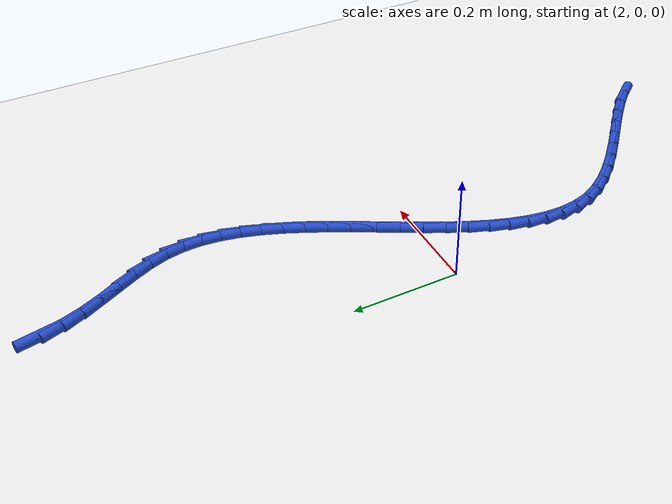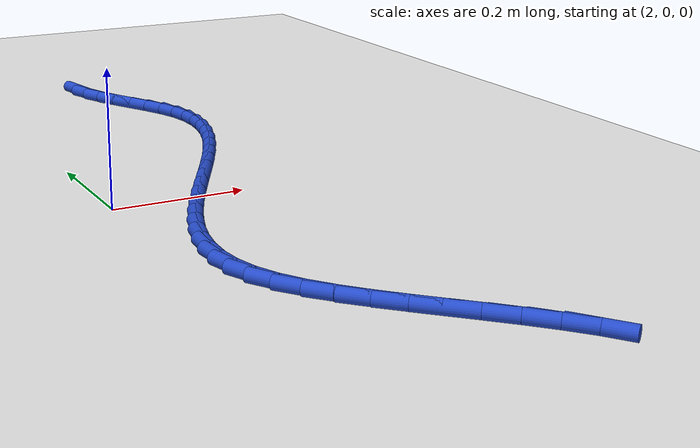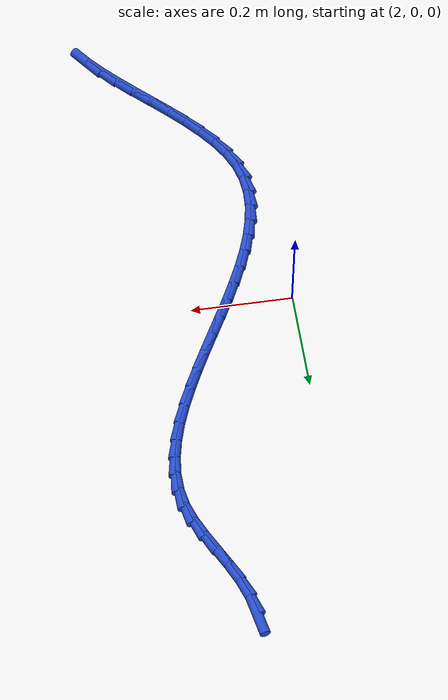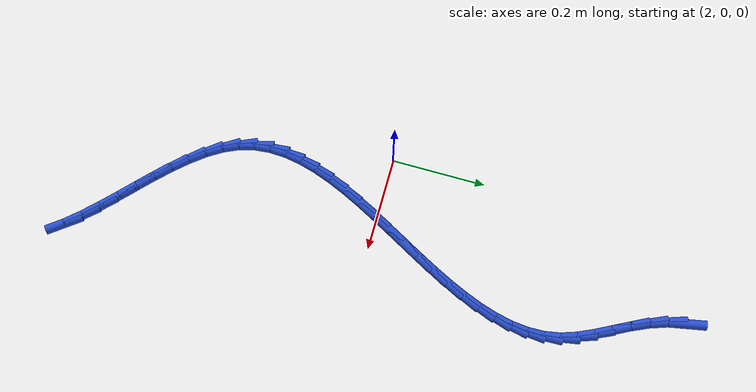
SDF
<sdf version="1.6">
 <world name="default">
  <model name="ground_plane">
   <static>1</static>
   <link name="link">
    <collision name="collision">
     <geometry><plane><normal>0 0 1</normal><size>100 100</size></plane></geometry>
     <surface><friction><ode><mu>100</mu><mu2>50</mu2></ode></friction></surface>
    </collision>
    <visual name="visual">
     <cast_shadows>0</cast_shadows>
     <geometry><plane><normal>0 0 1</normal><size>100 100</size></plane></geometry>
     <material>
      <script><uri>file://media/materials/scripts/gazebo.material</uri><name>Gazebo/WhiteGlow</name></script>
     </material>
    </visual>
   </link>
  </model>
  <model name="line">
   <link name="link_96">
    <pose>2.1782346783369175 0.6746997137805436 0.01 0 1.57 -1.383616062569331</pose>
    <collision name="collision">
     <geometry><cylinder><radius>0.01</radius><length>0.08</length></cylinder></geometry>
    </collision>
    <visual name="visual">
     <material>
      <script><name>Gazebo/Blue</name><uri>file://media/materials/scripts/gazebo.material</uri></script>
     </material>
     <geometry><cylinder><radius>0.01</radius><length>0.08</length></cylinder></geometry>
    </visual>
   </link>
   <link name="link_97">
    <pose>2.1855108415480964 0.6362822710506619 0.01 0 1.57 -1.2395233866798958</pose>
    <collision name="collision">
     <geometry><cylinder><radius>0.01</radius><length>0.08</length></cylinder></geometry>
    </collision>
    <visual name="visual">
     <material>
      <script><name>Gazebo/Blue</name><uri>file://media/materials/scripts/gazebo.material</uri></script>
     </material>
     <geometry><cylinder><radius>0.01</radius><length>0.08</length></cylinder></geometry>
    </visual>
   </link>
   <link name="link_98">
    <pose>2.19804050636858 0.5998532962021736 0.01 0 1.57 -1.1415946008068334</pose>
    <collision name="collision">
     <geometry><cylinder><radius>0.01</radius><length>0.08</length></cylinder></geometry>
    </collision>
    <visual name="visual">
     <material>
      <script><name>Gazebo/Blue</name><uri>file://media/materials/scripts/gazebo.material</uri></script>
     </material>
     <geometry><cylinder><radius>0.01</radius><length>0.08</length></cylinder></geometry>
    </visual>
   </link>
   <link name="link_99">
    <pose>2.2140095888458298 0.5649600348524088 0.01 0 1.57 -1.0914660895145174</pose>
    <collision name="collision">
     <geometry><cylinder><radius>0.01</radius><length>0.08</length></cylinder></geometry>
    </collision>
    <visual name="visual">
     <material>
      <script><name>Gazebo/Blue</name><uri>file://media/materials/scripts/gazebo.material</uri></script>
     </material>
     <geometry><cylinder><radius>0.01</radius><length>0.08</length></cylinder></geometry>
    </visual>
   </link>
   <link name="link_100">
    <pose>2.2315862279250274 0.5311431882261556 0.01 0 1.57 -1.089181620923286</pose>
    <collision name="collision">
     <geometry><cylinder><radius>0.01</radius><length>0.08</length></cylinder></geometry>
    </collision>
    <visual name="visual">
     <material>
      <script><name>Gazebo/Blue</name><uri>file://media/materials/scripts/gazebo.material</uri></script>
     </material>
     <geometry><cylinder><radius>0.01</radius><length>0.08</length></cylinder></geometry>
    </visual>
   </link>
   <link name="link_101">
    <pose>2.248938562551357 0.4979434575482013 0.01 0 1.57 -1.137240091393421</pose>
    <collision name="collision">
     <geometry><cylinder><radius>0.01</radius><length>0.08</length></cylinder></geometry>
    </collision>
    <visual name="visual">
     <material>
      <script><name>Gazebo/Blue</name><uri>file://media/materials/scripts/gazebo.material</uri></script>
     </material>
     <geometry><cylinder><radius>0.01</radius><length>0.08</length></cylinder></geometry>
    </visual>
   </link>
   <link name="link_102">
    <pose>2.264234731670003 0.46490154404333467 0.01 0 1.57 -1.2411399268727485</pose>
    <collision name="collision">
     <geometry><cylinder><radius>0.01</radius><length>0.08</length></cylinder></geometry>
    </collision>
    <visual name="visual">
     <material>
      <script><name>Gazebo/Blue</name><uri>file://media/materials/scripts/gazebo.material</uri></script>
     </material>
     <geometry><cylinder><radius>0.01</radius><length>0.08</length></cylinder></geometry>
    </visual>
   </link>
   <link name="link_103">
    <pose>2.2756428742261474 0.4315581489363427 0.01 0 1.57 -1.3942051511501437</pose>
    <collision name="collision">
     <geometry><cylinder><radius>0.01</radius><length>0.08</length></cylinder></geometry>
    </collision>
    <visual name="visual">
     <material>
      <script><name>Gazebo/Blue</name><uri>file://media/materials/scripts/gazebo.material</uri></script>
     </material>
     <geometry><cylinder><radius>0.01</radius><length>0.08</length></cylinder></geometry>
    </visual>
   </link>
   <link name="link_104">
    <pose>2.281713430924339 0.39753989866057277 0.01 0 1.57 -1.5455130837534963</pose>
    <collision name="collision">
     <geometry><cylinder><radius>0.01</radius><length>0.08</length></cylinder></geometry>
    </collision>
    <visual name="visual">
     <material>
      <script><name>Gazebo/Blue</name><uri>file://media/materials/scripts/gazebo.material</uri></script>
     </material>
     <geometry><cylinder><radius>0.01</radius><length>0.08</length></cylinder></geometry>
    </visual>
   </link>
   <link name="link_105">
    <pose>2.2825911524436857 0.36283175286054636 0.01 0 1.57 1.4648844959214395</pose>
    <collision name="collision">
     <geometry><cylinder><radius>0.01</radius><length>0.08</length></cylinder></geometry>
    </collision>
    <visual name="visual">
     <material>
      <script><name>Gazebo/Blue</name><uri>file://media/materials/scripts/gazebo.material</uri></script>
     </material>
     <geometry><cylinder><radius>0.01</radius><length>0.08</length></cylinder></geometry>
    </visual>
   </link>
   <link name="link_106">
    <pose>2.278836329657872 0.3275120669787636 0.01 0 1.57 1.355857639672878</pose>
    <collision name="collision">
     <geometry><cylinder><radius>0.01</radius><length>0.08</length></cylinder></geometry>
    </collision>
    <visual name="visual">
     <material>
      <script><name>Gazebo/Blue</name><uri>file://media/materials/scripts/gazebo.material</uri></script>
     </material>
     <geometry><cylinder><radius>0.01</radius><length>0.08</length></cylinder></geometry>
    </visual>
   </link>
   <link name="link_107">
    <pose>2.2710092545103215 0.29165919669815404 0.01 0 1.57 1.2680901325834515</pose>
    <collision name="collision">
     <geometry><cylinder><radius>0.01</radius><length>0.08</length></cylinder></geometry>
    </collision>
    <visual name="visual">
     <material>
      <script><name>Gazebo/Blue</name><uri>file://media/materials/scripts/gazebo.material</uri></script>
     </material>
     <geometry><cylinder><radius>0.01</radius><length>0.08</length></cylinder></geometry>
    </visual>
   </link>
   <link name="link_108">
    <pose>2.259670218944454 0.25535149770164756 0.01 0 1.57 1.199321795445672</pose>
    <collision name="collision">
     <geometry><cylinder><radius>0.01</radius><length>0.08</length></cylinder></geometry>
    </collision>
    <visual name="visual">
     <material>
      <script><name>Gazebo/Blue</name><uri>file://media/materials/scripts/gazebo.material</uri></script>
     </material>
     <geometry><cylinder><radius>0.01</radius><length>0.08</length></cylinder></geometry>
    </visual>
   </link>
   <link name="link_109">
    <pose>2.2453795149036906 0.21866732567217514 0.01 0 1.57 1.1470421750440625</pose>
    <collision name="collision">
     <geometry><cylinder><radius>0.01</radius><length>0.08</length></cylinder></geometry>
    </collision>
    <visual name="visual">
     <material>
      <script><name>Gazebo/Blue</name><uri>file://media/materials/scripts/gazebo.material</uri></script>
     </material>
     <geometry><cylinder><radius>0.01</radius><length>0.08</length></cylinder></geometry>
    </visual>
   </link>
   <link name="link_110">
    <pose>2.228697434331454 0.18168503629266616 0.01 0 1.57 1.10903986808021</pose>
    <collision name="collision">
     <geometry><cylinder><radius>0.01</radius><length>0.08</length></cylinder></geometry>
    </collision>
    <visual name="visual">
     <material>
      <script><name>Gazebo/Blue</name><uri>file://media/materials/scripts/gazebo.material</uri></script>
     </material>
     <geometry><cylinder><radius>0.01</radius><length>0.08</length></cylinder></geometry>
    </visual>
   </link>
   <link name="link_111">
    <pose>2.2101842691711653 0.14448298524605163 0.01 0 1.57 1.083606565976614</pose>
    <collision name="collision">
     <geometry><cylinder><radius>0.01</radius><length>0.08</length></cylinder></geometry>
    </collision>
    <visual name="visual">
     <material>
      <script><name>Gazebo/Blue</name><uri>file://media/materials/scripts/gazebo.material</uri></script>
     </material>
     <geometry><cylinder><radius>0.01</radius><length>0.08</length></cylinder></geometry>
    </visual>
   </link>
   <link name="link_112">
    <pose>2.190400311366246 0.10713952821526089 0.01 0 1.57 1.0695784848210435</pose>
    <collision name="collision">
     <geometry><cylinder><radius>0.01</radius><length>0.08</length></cylinder></geometry>
    </collision>
    <visual name="visual">
     <material>
      <script><name>Gazebo/Blue</name><uri>file://media/materials/scripts/gazebo.material</uri></script>
     </material>
     <geometry><cylinder><radius>0.01</radius><length>0.08</length></cylinder></geometry>
    </visual>
   </link>
   <link name="link_113">
    <pose>2.1699058528601176 0.06973302088322501 0.01 0 1.57 1.0663220795239765</pose>
    <collision name="collision">
     <geometry><cylinder><radius>0.01</radius><length>0.08</length></cylinder></geometry>
    </collision>
    <visual name="visual">
     <material>
      <script><name>Gazebo/Blue</name><uri>file://media/materials/scripts/gazebo.material</uri></script>
     </material>
     <geometry><cylinder><radius>0.01</radius><length>0.08</length></cylinder></geometry>
    </visual>
   </link>
   <link name="link_114">
    <pose>2.1492611855962007 0.032341818932873204 0.01 0 1.57 1.0737156624458328</pose>
    <collision name="collision">
     <geometry><cylinder><radius>0.01</radius><length>0.08</length></cylinder></geometry>
    </collision>
    <visual name="visual">
     <material>
      <script><name>Gazebo/Blue</name><uri>file://media/materials/scripts/gazebo.material</uri></script>
     </material>
     <geometry><cylinder><radius>0.01</radius><length>0.08</length></cylinder></geometry>
    </visual>
   </link>
   <link name="link_115">
    <pose>2.1290266015179182 -0.004955721952863298 0.01 0 1.57 1.0921480796702294</pose>
    <collision name="collision">
     <geometry><cylinder><radius>0.01</radius><length>0.08</length></cylinder></geometry>
    </collision>
    <visual name="visual">
     <material>
      <script><name>Gazebo/Blue</name><uri>file://media/materials/scripts/gazebo.material</uri></script>
     </material>
     <geometry><cylinder><radius>0.01</radius><length>0.08</length></cylinder></geometry>
    </visual>
   </link>
   <link name="link_116">
    <pose>2.1097623925686904 -0.04208124609105489 0.01 0 1.57 1.1225389408087765</pose>
    <collision name="collision">
     <geometry><cylinder><radius>0.01</radius><length>0.08</length></cylinder></geometry>
    </collision>
    <visual name="visual">
     <material>
      <script><name>Gazebo/Blue</name><uri>file://media/materials/scripts/gazebo.material</uri></script>
     </material>
     <geometry><cylinder><radius>0.01</radius><length>0.08</length></cylinder></geometry>
    </visual>
   </link>
   <link name="link_117">
    <pose>2.0920288506919396 -0.07895639779877227 0.01 0 1.57 1.1663708971775595</pose>
    <collision name="collision">
     <geometry><cylinder><radius>0.01</radius><length>0.08</length></cylinder></geometry>
    </collision>
    <visual name="visual">
     <material>
      <script><name>Gazebo/Blue</name><uri>file://media/materials/scripts/gazebo.material</uri></script>
     </material>
     <geometry><cylinder><radius>0.01</radius><length>0.08</length></cylinder></geometry>
    </visual>
   </link>
   <link name="link_118">
    <pose>2.0763862678310874 -0.11550282139308336 0.01 0 1.57 1.2257020928232558</pose>
    <collision name="collision">
     <geometry><cylinder><radius>0.01</radius><length>0.08</length></cylinder></geometry>
    </collision>
    <visual name="visual">
     <material>
      <script><name>Gazebo/Blue</name><uri>file://media/materials/scripts/gazebo.material</uri></script>
     </material>
     <geometry><cylinder><radius>0.01</radius><length>0.08</length></cylinder></geometry>
    </visual>
   </link>
   <link name="link_119">
    <pose>2.063394935929554 -0.151642161191059 0.01 0 1.57 1.3030829954711796</pose>
    <collision name="collision">
     <geometry><cylinder><radius>0.01</radius><length>0.08</length></cylinder></geometry>
    </collision>
    <visual name="visual">
     <material>
      <script><name>Gazebo/Blue</name><uri>file://media/materials/scripts/gazebo.material</uri></script>
     </material>
     <geometry><cylinder><radius>0.01</radius><length>0.08</length></cylinder></geometry>
    </visual>
   </link>
   <link name="link_120">
    <pose>2.053615146930762 -0.1872960615097688 0.01 0 1.57 1.4012254846425376</pose>
    <collision name="collision">
     <geometry><cylinder><radius>0.01</radius><length>0.08</length></cylinder></geometry>
    </collision>
    <visual name="visual">
     <material>
      <script><name>Gazebo/Blue</name><uri>file://media/materials/scripts/gazebo.material</uri></script>
     </material>
     <geometry><cylinder><radius>0.01</radius><length>0.08</length></cylinder></geometry>
    </visual>
   </link>
   <link name="link_121">
    <pose>2.0476071927781323 -0.22238616666628283 0.01 0 1.57 1.5221865545894728</pose>
    <collision name="collision">
     <geometry><cylinder><radius>0.01</radius><length>0.08</length></cylinder></geometry>
    </collision>
    <visual name="visual">
     <material>
      <script><name>Gazebo/Blue</name><uri>file://media/materials/scripts/gazebo.material</uri></script>
     </material>
     <geometry><cylinder><radius>0.01</radius><length>0.08</length></cylinder></geometry>
    </visual>
   </link>
   <link name="link_122">
    <pose>2.0459313654150866 -0.25683412097767155 0.01 0 1.57 -1.475713765621334</pose>
    <collision name="collision">
     <geometry><cylinder><radius>0.01</radius><length>0.08</length></cylinder></geometry>
    </collision>
    <visual name="visual">
     <material>
      <script><name>Gazebo/Blue</name><uri>file://media/materials/scripts/gazebo.material</uri></script>
     </material>
     <geometry><cylinder><radius>0.01</radius><length>0.08</length></cylinder></geometry>
    </visual>
   </link>
   <link name="link_123">
    <pose>2.0491479567850472 -0.29056156876100336 0.01 0 1.57 -1.3133622797419153</pose>
    <collision name="collision">
     <geometry><cylinder><radius>0.01</radius><length>0.08</length></cylinder></geometry>
    </collision>
    <visual name="visual">
     <material>
      <script><name>Gazebo/Blue</name><uri>file://media/materials/scripts/gazebo.material</uri></script>
     </material>
     <geometry><cylinder><radius>0.01</radius><length>0.08</length></cylinder></geometry>
    </visual>
   </link>
   <link name="link_124">
    <pose>2.0578172588314336 -0.3234901543333485 0.01 0 1.57 -1.1460854847173265</pose>
    <collision name="collision">
     <geometry><cylinder><radius>0.01</radius><length>0.08</length></cylinder></geometry>
    </collision>
    <visual name="visual">
     <material>
      <script><name>Gazebo/Blue</name><uri>file://media/materials/scripts/gazebo.material</uri></script>
     </material>
     <geometry><cylinder><radius>0.01</radius><length>0.08</length></cylinder></geometry>
    </visual>
   </link>
   <link name="link_125">
    <pose>2.0723230406194064 -0.3555659287350983 0.01 0 1.57 -1.0086181535299756</pose>
    <collision name="collision">
     <geometry><cylinder><radius>0.01</radius><length>0.08</length></cylinder></geometry>
    </collision>
    <visual name="visual">
     <material>
      <script><name>Gazebo/Blue</name><uri>file://media/materials/scripts/gazebo.material</uri></script>
     </material>
     <geometry><cylinder><radius>0.01</radius><length>0.08</length></cylinder></geometry>
    </visual>
   </link>
   <link name="link_126">
    <pose>2.09204647695527 -0.3868735654952427 0.01 0 1.57 -0.9074832688841588</pose>
    <collision name="collision">
     <geometry><cylinder><radius>0.01</radius><length>0.08</length></cylinder></geometry>
    </collision>
    <visual name="visual">
     <material>
      <script><name>Gazebo/Blue</name><uri>file://media/materials/scripts/gazebo.material</uri></script>
     </material>
     <geometry><cylinder><radius>0.01</radius><length>0.08</length></cylinder></geometry>
    </visual>
   </link>
   <link name="link_127">
    <pose>2.116015234373255 -0.41754661553856687 0.01 0 1.57 -0.8363998537139098</pose>
    <collision name="collision">
     <geometry><cylinder><radius>0.01</radius><length>0.08</length></cylinder></geometry>
    </collision>
    <visual name="visual">
     <material>
      <script><name>Gazebo/Blue</name><uri>file://media/materials/scripts/gazebo.material</uri></script>
     </material>
     <geometry><cylinder><radius>0.01</radius><length>0.08</length></cylinder></geometry>
    </visual>
   </link>
   <link name="link_128">
    <pose>2.143256580917992 -0.44771868488654437 0.01 0 1.57 -0.7898380528214127</pose>
    <collision name="collision">
     <geometry><cylinder><radius>0.01</radius><length>0.08</length></cylinder></geometry>
    </collision>
    <visual name="visual">
     <material>
      <script><name>Gazebo/Blue</name><uri>file://media/materials/scripts/gazebo.material</uri></script>
     </material>
     <geometry><cylinder><radius>0.01</radius><length>0.08</length></cylinder></geometry>
    </visual>
   </link>
   <link name="link_129">
    <pose>2.172797784634109 -0.4775233795606475 0.01 0 1.57 -0.7639352303113621</pose>
    <collision name="collision">
     <geometry><cylinder><radius>0.01</radius><length>0.08</length></cylinder></geometry>
    </collision>
    <visual name="visual">
     <material>
      <script><name>Gazebo/Blue</name><uri>file://media/materials/scripts/gazebo.material</uri></script>
     </material>
     <geometry><cylinder><radius>0.01</radius><length>0.08</length></cylinder></geometry>
    </visual>
   </link>
   <link name="link_130">
    <pose>2.2036661135662343 -0.5070943055823487 0.01 0 1.57 -0.7565404954809101</pose>
    <collision name="collision">
     <geometry><cylinder><radius>0.01</radius><length>0.08</length></cylinder></geometry>
    </collision>
    <visual name="visual">
     <material>
      <script><name>Gazebo/Blue</name><uri>file://media/materials/scripts/gazebo.material</uri></script>
     </material>
     <geometry><cylinder><radius>0.01</radius><length>0.08</length></cylinder></geometry>
    </visual>
   </link>
   <link name="link_131">
    <pose>2.234888835758998 -0.5365650689731215 0.01 0 1.57 -0.7670970540012517</pose>
    <collision name="collision">
     <geometry><cylinder><radius>0.01</radius><length>0.08</length></cylinder></geometry>
    </collision>
    <visual name="visual">
     <material>
      <script><name>Gazebo/Blue</name><uri>file://media/materials/scripts/gazebo.material</uri></script>
     </material>
     <geometry><cylinder><radius>0.01</radius><length>0.08</length></cylinder></geometry>
    </visual>
   </link>
   <link name="link_132">
    <pose>2.265493219257027 -0.5660692757544363 0.01 0 1.57 -0.7966092158222413</pose>
    <collision name="collision">
     <geometry><cylinder><radius>0.01</radius><length>0.08</length></cylinder></geometry>
    </collision>
    <visual name="visual">
     <material>
      <script><name>Gazebo/Blue</name><uri>file://media/materials/scripts/gazebo.material</uri></script>
     </material>
     <geometry><cylinder><radius>0.01</radius><length>0.08</length></cylinder></geometry>
    </visual>
   </link>
   <link name="link_133">
    <pose>2.294506532104951 -0.595740531947767 0.01 0 1.57 -0.8477474576240682</pose>
    <collision name="collision">
     <geometry><cylinder><radius>0.01</radius><length>0.08</length></cylinder></geometry>
    </collision>
    <visual name="visual">
     <material>
      <script><name>Gazebo/Blue</name><uri>file://media/materials/scripts/gazebo.material</uri></script>
     </material>
     <geometry><cylinder><radius>0.01</radius><length>0.08</length></cylinder></geometry>
    </visual>
   </link>
   <link name="link_134">
    <pose>2.320956042347398 -0.6257124435745857 0.01 0 1.57 -0.9250186131873281</pose>
    <collision name="collision">
     <geometry><cylinder><radius>0.01</radius><length>0.08</length></cylinder></geometry>
    </collision>
    <visual name="visual">
     <material>
      <script><name>Gazebo/Blue</name><uri>file://media/materials/scripts/gazebo.material</uri></script>
     </material>
     <geometry><cylinder><radius>0.01</radius><length>0.08</length></cylinder></geometry>
    </visual>
   </link>
  </model>
 </world>
</sdf>
